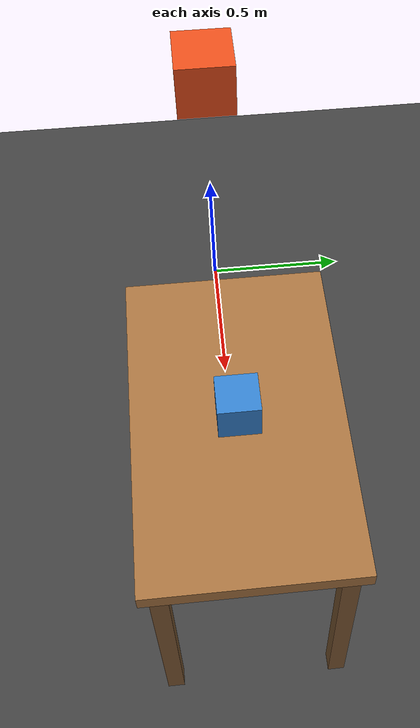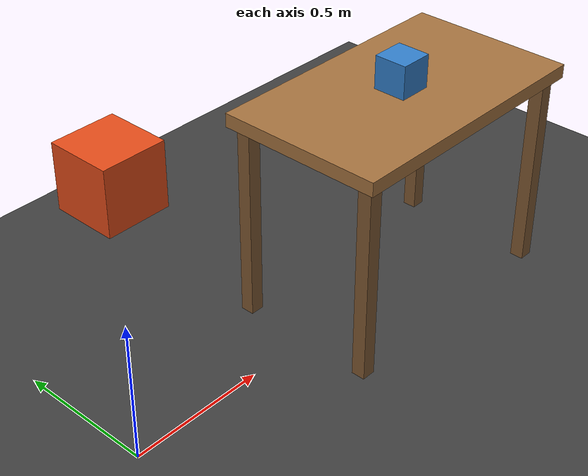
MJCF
<mujoco model="empty-room">
  <compiler angle="radian"/>
  <option timestep="0.002" gravity="0 0 -9.81"/>

  <visual>
    <rgba haze="0.15 0.25 0.35 1"/>
    <global offwidth="2560" offheight="1440" elevation="-20" azimuth="120"/>
  </visual>

  <asset>
    <texture type="skybox" builtin="gradient" rgb1=".3 .5 .7" rgb2="0 0 0" width="32" height="512"/>
    <texture type="2d" name="grid_tex" builtin="checker" width="512" height="512"
             rgb1=".2 .2 .2" rgb2=".3 .3 .3"/>
    <material name="grid" texture="grid_tex" texrepeat="8 8" reflectance=".1"/>
  </asset>

  <worldbody>
    <light diffuse=".8 .8 .8" pos="0 0 5" dir="0 0 -1" castshadow="true"/>
    <light diffuse=".4 .4 .4" pos="2 2 4" dir="-1 -1 -2"/>

    <!-- Ground plane -->
    <geom type="plane" size="10 10 0.1" material="grid"/>

    <!-- Dynamic box: drops to verify physics works -->
    <body name="sample_box" pos="0 0 1">
      <freejoint/>
      <geom type="box" size=".1 .1 .1" rgba=".9 .3 .1 1" mass="1"/>
    </body>

    <!-- Static table welded to world -->
    <body name="table" pos="1.2 0 0">
      <inertial pos="0 0 0.5" mass="14" diaginertia="1 1 1"/>
      <!-- Tabletop -->
      <geom name="table_top" type="box" size="0.5 0.3 0.025" pos="0 0 0.75"
            rgba="0.65 0.45 0.25 1"/>
      <!-- Leg front-left -->
      <geom name="table_leg_fl" type="box" size="0.025 0.025 0.375" pos="-0.45 0.25 0.375"
            rgba="0.5 0.35 0.2 1"/>
      <!-- Leg front-right -->
      <geom name="table_leg_fr" type="box" size="0.025 0.025 0.375" pos="0.45 0.25 0.375"
            rgba="0.5 0.35 0.2 1"/>
      <!-- Leg back-left -->
      <geom name="table_leg_bl" type="box" size="0.025 0.025 0.375" pos="-0.45 -0.25 0.375"
            rgba="0.5 0.35 0.2 1"/>
      <!-- Leg back-right -->
      <geom name="table_leg_br" type="box" size="0.025 0.025 0.375" pos="0.45 -0.25 0.375"
            rgba="0.5 0.35 0.2 1"/>
    </body>

    <!-- Dynamic blue box sitting on table
         tabletop surface = 0.75 + 0.025 = 0.775; box half-height = 0.06 → centre at 0.835 -->
    <body name="box_on_table" pos="1.2 0 0.835">
      <freejoint/>
      <geom name="box_on_table_geom" type="box" size="0.06 0.06 0.06"
            rgba="0.2 0.5 0.8 1" mass="0.5"/>
    </body>

  </worldbody>

  <actuator>
    <!-- Add actuators here -->
  </actuator>
</mujoco>
